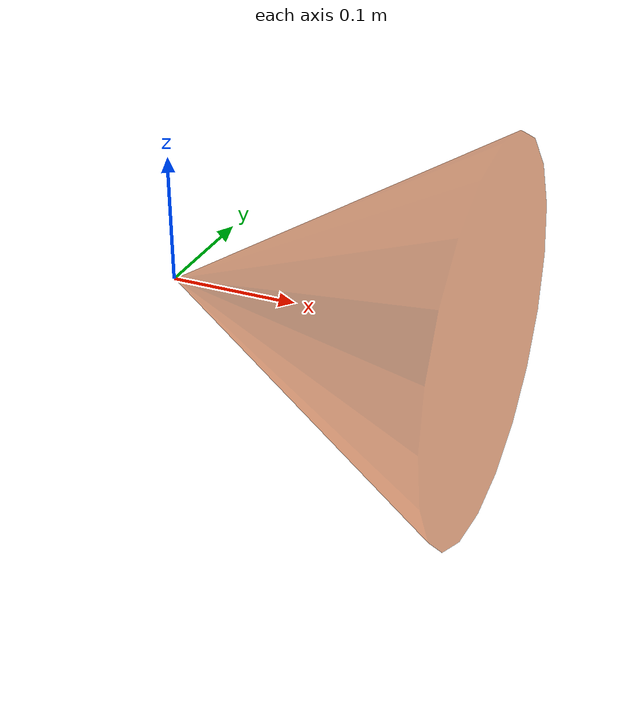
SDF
<?xml version="1.0" ?>
<sdf version="1.9">
  <model name="net_cone">

    <link name="net_link">
      <inertial>
        <mass>0.30</mass>
        <!-- Ince kabuk koni yaklasimi; tam dogru degil ama menzil/balistik
             icin yeterli. Agirlik merkezi agza dogru kayik. -->
        <pose>0.15 0 0 0 0 0</pose>
        <inertia>
          <ixx>0.0012</ixx>
          <ixy>0</ixy>
          <ixz>0</ixz>
          <iyy>0.0009</iyy>
          <iyz>0</iyz>
          <izz>0.0009</izz>
        </inertia>
      </inertial>

      <collision name="net_collision">
        <pose degrees="true">0.125 0 0 0 -90 0</pose>
        <geometry>
          <cone>
            <radius>0.15</radius>
            <length>0.25</length>
          </cone>
        </geometry>
        <surface>
          <contact>
            <ode>
              <!-- Ag yumusak: hedefi sekmeden yakalamali -->
              <max_vel>0.1</max_vel>
              <min_depth>0.005</min_depth>
            </ode>
          </contact>
          <friction>
            <ode>
              <mu>1.5</mu>
              <mu2>1.5</mu2>
            </ode>
          </friction>
        </surface>
      </collision>

      <visual name="net_visual">
        <pose degrees="true">0.125 0 0 0 -90 0</pose>
        <geometry>
          <cone>
            <radius>0.15</radius>
            <length>0.25</length>
          </cone>
        </geometry>
        <material>
          <ambient>0.9 0.35 0.05 0.55</ambient>
          <diffuse>0.9 0.35 0.05 0.55</diffuse>
          <specular>0.1 0.1 0.1 1</specular>
        </material>
        <transparency>0.45</transparency>
      </visual>

      <!-- Yakalama tespiti: NetCapturePlugin bu sensoru dinler -->
      <sensor name="net_contact" type="contact">
        <always_on>true</always_on>
        <!-- Fizik adimiyla ayni hiz: 20 m/s'de 200 Hz ornekleme (5 ms = 10 cm)
             30 cm'lik hedefte temasi kacirabiliyordu. -->
        <update_rate>1000</update_rate>
        <contact>
          <collision>net_collision</collision>
        </contact>
      </sensor>
    </link>

    <plugin filename="gz-sim-lift-drag-system"
      name="gz::sim::systems::LiftDrag">
      <a0>0.0</a0>
      <cla>0.0</cla>
      <cda>0.30</cda>
      <cma>0.0</cma>
      <alpha_stall>1.5708</alpha_stall>
      <cla_stall>0.0</cla_stall>
      <cda_stall>0.30</cda_stall>
      <cma_stall>0.0</cma_stall>
      <cp>0.15 0 0</cp>
      <area>0.10</area>
      <air_density>1.2041</air_density>
      <forward>1 0 0</forward>
      <upward>0 0 1</upward>
      <link_name>net_link</link_name>
    </plugin>

  </model>
</sdf>
